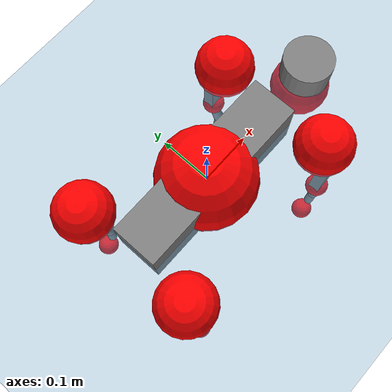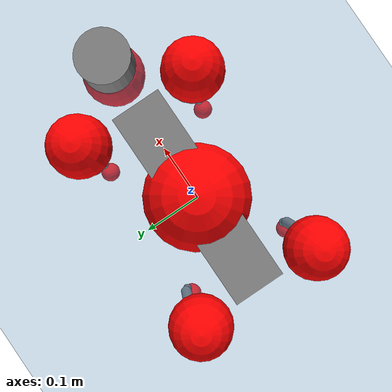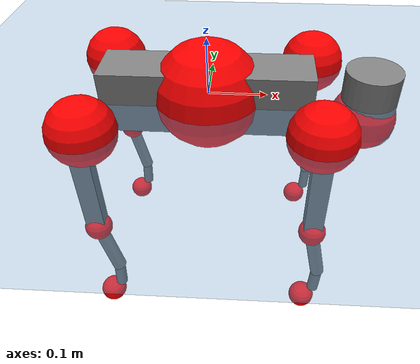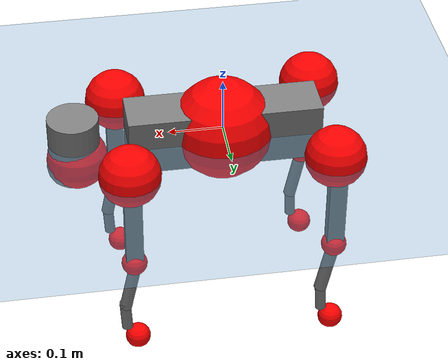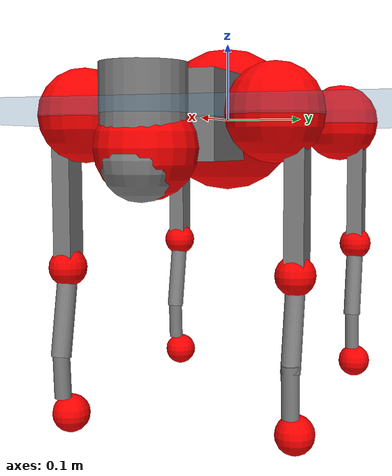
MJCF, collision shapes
<mujoco model="go2">
  <compiler angle="radian" assetdir="assets" balanceinertia="true" inertiafromgeom="false"/>

  <option timestep="0.005" density="1.2" viscosity="2e-05"/>

  <size nkey="1"/>

  <visual>
    <quality shadowsize="8192"/>
    <map shadowclip="0.5"/>
  </visual>

  <default>
    <default class="/">
      <geom contype="0" conaffinity="0" group="1" solref="-1000 -80"/>
      <site size="0.01 0.005 0.005" group="5"/>
      <general forcelimited="true" biastype="affine" gainprm="20" biasprm="0 -20 -0.5"/>
      <default class="go2">
        <joint armature="0.01" damping="0.01" frictionloss="0.2"/>
        <geom condim="1" margin="0.001"/>
        <default class="visual">
          <geom type="mesh" group="2"/>
        </default>
        <default class="collision">
          <geom group="3"/>
          <default class="foot">
            <geom size="0.022 0 0" condim="6" priority="1" friction="0.8 0.02 0.01" solimp="0.015 1 0.022"/>
          </default>
        </default>
        <default class="reward_collision_sphere">
          <geom group="5" rgba="1 0 0 1"/>
        </default>
      </default>
    </default>
  </default>

  <asset>
    <texture type="skybox" colorspace="auto" name="//unnamed_texture_0" builtin="gradient" rgb1="0.95 0.95 0.95" rgb2="0.95 0.95 0.95" width="100" height="600"/>
    <texture type="2d" colorspace="auto" name="texplane" builtin="checker" rgb1="0.345 0.575 0.748" rgb2="0.345 0.575 0.748" markrgb="1 1 1" width="512" height="512"/>
    <material name="MatPlane" class="/" texture="texplane" texuniform="true" texrepeat="2 2" specular="0.9"/>
    <material name="metal" class="/" rgba="0.9 0.95 0.95 1"/>
    <material name="black" class="/" rgba="0 0 0 1"/>
    <material name="white" class="/"/>
    <material name="gray" class="/" rgba="0.671705 0.692426 0.77427 1"/>
    <mesh name="base_0" class="/" file="base_0.obj"/>
    <mesh name="base_1" class="/" file="base_1.obj"/>
    <mesh name="base_2" class="/" file="base_2.obj"/>
    <mesh name="base_3" class="/" file="base_3.obj"/>
    <mesh name="base_4" class="/" file="base_4.obj"/>
    <mesh name="hip_0" class="/" file="hip_0.obj"/>
    <mesh name="hip_1" class="/" file="hip_1.obj"/>
    <mesh name="thigh_0" class="/" file="thigh_0.obj"/>
    <mesh name="thigh_1" class="/" file="thigh_1.obj"/>
    <mesh name="thigh_mirror_0" class="/" file="thigh_mirror_0.obj"/>
    <mesh name="thigh_mirror_1" class="/" file="thigh_mirror_1.obj"/>
    <mesh name="calf_0" class="/" file="calf_0.obj"/>
    <mesh name="calf_1" class="/" file="calf_1.obj"/>
    <mesh name="calf_mirror_0" class="/" file="calf_mirror_0.obj"/>
    <mesh name="calf_mirror_1" class="/" file="calf_mirror_1.obj"/>
    <mesh name="foot" class="/" file="foot.obj"/>
  </asset>

  <worldbody>
    <geom name="floor" class="/" size="100 100 0.125" type="plane" group="0" material="MatPlane"/>
    <light name="toplight_shadow" class="/" pos="0 0 5" dir="0.0990148 0.0990148 -0.990148" type="directional" ambient="0.04 0.04 0.04" diffuse="0.55 0.55 0.55" specular="0.12 0.12 0.12"/>
    <light name="toplight_fill" class="/" pos="0 0 5" dir="0.0990148 0.0990148 -0.990148" type="directional" castshadow="false" ambient="0.04 0.04 0.04" diffuse="0.3 0.3 0.3" specular="0.08 0.08 0.08"/>
    <body name="trunk" childclass="go2" pos="2.51288e-05 -4.60095e-06 0.000721076" quat="1 5.86278e-05 -5.00796e-06 5.85315e-05">
      <inertial pos="0.019729 0.000427554 -0.00502448" quat="-0.000613026 0.713403 -0.00201709 0.70075" mass="5.79395" diaginertia="0.0850741 0.100965 0.0113114"/>
      <joint name="//unnamed_joint_0" type="free" armature="0" damping="0" frictionloss="0"/>
      <geom name="//unnamed_geom_1" class="visual" material="black" mesh="base_0"/>
      <geom name="//unnamed_geom_2" class="visual" material="black" mesh="base_1"/>
      <geom name="//unnamed_geom_3" class="visual" material="black" mesh="base_2"/>
      <geom name="//unnamed_geom_4" class="visual" material="white" mesh="base_3"/>
      <geom name="//unnamed_geom_5" class="visual" material="gray" mesh="base_4"/>
      <geom name="trunk_1" class="collision" size="0.176316 0.0438212 0.053429" type="box"/>
      <geom name="trunk_2" class="collision" size="0.0468675 0.0421808" pos="0.271616 0 0.00854803" type="cylinder"/>
      <geom name="trunk_3" class="collision" size="0.0440555" pos="0.27924 0 -0.0512882"/>
      <geom name="//unnamed_geom_9" class="reward_collision_sphere" size="0.0937351"/>
      <geom name="//unnamed_geom_10" class="reward_collision_sphere" size="0.0562411" pos="0.266851 0 -0.0384661"/>
      <site name="imu" pos="-0.0253023 0.00459107 0.0344285" size="0.00937351"/>
      <camera name="track" pos="0 -2.00842 0" quat="0.707107 0.707107 0 0" mode="trackcom"/>
      <camera name="ego_camera" pos="0.297348 0 0.0384661" quat="-0.5 -0.5 0.5 0.5"/>
      <body name="FL_hip" pos="0.183647 0.0476208 0.00134912" quat="1 8.26128e-05 0.000116102 -1.02964e-05">
        <inertial pos="-0.00503155 0.0023616 0.000744717" quat="0.49815 0.498807 0.506015 0.496978" mass="0.555293" diaginertia="0.000694268 0.000614423 0.000216125"/>
        <joint name="FL_hip_joint" pos="0 0 0" axis="0.999991 -0.00304284 0.00278251" stiffness="0.000151481" range="-1.03784 1.05006" armature="0.00895607" damping="0.00246094" frictionloss="0.189221"/>
        <geom name="//unnamed_geom_11" class="visual" material="metal" mesh="hip_0"/>
        <geom name="//unnamed_geom_12" class="visual" material="gray" mesh="hip_1"/>
        <geom name="//unnamed_geom_13" class="collision" size="0.0431181 0.018747" pos="0 0.0803369 0" quat="0.707107 0.707107 0 0" type="cylinder"/>
        <geom name="//unnamed_geom_14" class="reward_collision_sphere" size="0.0562411" pos="0 0.0702948 0"/>
        <body name="FL_thigh" pos="-9.60598e-05 0.0959989 0.00157346" quat="1 -1.01753e-05 1.4973e-06 -2.77931e-06">
          <inertial pos="-0.00359725 -0.0222297 -0.0269839" quat="0.829813 0.0854831 -0.021079 0.551052" mass="0.950868" diaginertia="0.00469868 0.00591874 0.000395437"/>
          <joint name="FL_thigh_joint" pos="0 0 0" axis="-0.00238262 0.999997 -0.000783022" stiffness="0.00523422" range="-1.54954 3.47725" armature="0.00956931" damping="0.0046693" frictionloss="0.18703"/>
          <geom name="//unnamed_geom_15" class="visual" material="metal" mesh="thigh_0"/>
          <geom name="//unnamed_geom_16" class="visual" material="gray" mesh="thigh_1"/>
          <geom name="//unnamed_geom_17" class="collision" size="0.0998279 0.0114825 0.015935" pos="0 0 -0.0910365" quat="0.707107 0 0.707107 0" type="box"/>
          <body name="FL_calf" pos="0.000257191 -0.00143369 -0.182406" quat="1 2.14808e-05 -0.000215085 -3.94393e-05">
            <inertial pos="0.00635043 -0.000540923 -0.12018" quat="0.710671 0.0015406 -0.00450126 0.703508" mass="0.201" diaginertia="0.00117271 0.00149156 2.43519e-05"/>
            <joint name="FL_calf_joint" pos="0 0 0" axis="0.00373132 0.999983 0.00439091" stiffness="0.000780881" range="-2.72155 -0.846424" armature="0.0095323" damping="0" frictionloss="0.194275"/>
            <geom name="//unnamed_geom_18" class="visual" material="gray" mesh="calf_0"/>
            <geom name="//unnamed_geom_19" class="visual" material="black" mesh="calf_1"/>
            <geom name="FL_calf0" class="collision" size="0.0112482 0.0562411" pos="0.00762431 0 -0.0512882" quat="0.994493 0 -0.104807 0" type="cylinder"/>
            <geom name="//unnamed_geom_21" class="collision" size="0.0103109 0.0304639" pos="0.0190608 0 -0.126511" quat="0.999688 0 0.0249974 0" type="cylinder"/>
            <geom name="//unnamed_geom_22" class="visual" pos="0 0 -0.182073" quat="1 0 0 0" material="black" mesh="foot"/>
            <geom name="FL_foot" class="foot" size="0.0175241" pos="-0.00190608 0 -0.182073"/>
            <geom name="//unnamed_geom_24" class="reward_collision_sphere" size="0.0234338"/>
            <geom name="//unnamed_geom_25" class="reward_collision_sphere" size="0.0234338" pos="-0.00190608 0 -0.182073"/>
            <site name="FL_foot" class="foot" pos="-0.00190608 0 -0.182073" size="0.00937351"/>
          </body>
        </body>
      </body>
      <body name="FR_hip" pos="0.184106 -0.0451019 0.000280667" quat="1 0.000189926 0.000102194 0.000176517">
        <inertial pos="-0.00505221 -0.00204263 -0.000862873" quat="0.497942 0.505327 0.499548 0.497142" mass="0.557251" diaginertia="0.000695308 0.000613193 0.000219183"/>
        <joint name="FR_hip_joint" pos="0 0 0" axis="1 -8.24344e-05 -0.000141907" range="-1.05801 1.03937" armature="0.00931539" damping="0.0125502" frictionloss="0.195944"/>
        <geom name="//unnamed_geom_26" class="visual" pos="0 1.30159e-09 5.58278e-08" quat="4.63268e-05 1 0 0" material="metal" mesh="hip_0"/>
        <geom name="//unnamed_geom_27" class="visual" pos="0 2.11003e-09 -1.38084e-07" quat="4.63268e-05 1 0 0" material="gray" mesh="hip_1"/>
        <geom name="//unnamed_geom_28" class="collision" size="0.0431181 0.018747" pos="0 -0.0803369 0" quat="0.707107 0.707107 0 0" type="cylinder"/>
        <geom name="//unnamed_geom_29" class="reward_collision_sphere" size="0.0562411" pos="0 -0.0702948 0"/>
        <body name="FR_thigh" pos="0.00137141 -0.0961079 3.65966e-05" quat="1 -1.05669e-05 0.000157996 -2.5761e-05">
          <inertial pos="-0.00376685 0.0221541 -0.0278258" quat="0.551619 -0.0200434 0.0847475 0.829538" mass="0.971754" diaginertia="0.0047154 0.00609458 0.00040912"/>
          <joint name="FR_thigh_joint" pos="0 0 0" axis="-0.00281378 -0.999984 -0.00491494" stiffness="0.000565665" range="-3.46798 1.55981" armature="0.00940119" damping="0.0118864" frictionloss="0.183441"/>
          <geom name="//unnamed_geom_30" class="visual" material="metal" mesh="thigh_mirror_0"/>
          <geom name="//unnamed_geom_31" class="visual" material="gray" mesh="thigh_mirror_1"/>
          <geom name="//unnamed_geom_32" class="collision" size="0.0998279 0.0114825 0.015935" pos="0 0 -0.0910365" quat="0.707107 0 0.707107 0" type="box"/>
          <body name="FR_calf" pos="0.000259622 -0.000582581 -0.182799" quat="1 5.38551e-05 -0.000250554 1.46907e-05">
            <inertial pos="0.0062445 0.00021644 -0.120292" quat="0.703783 -0.00483683 0.000989214 0.710398" mass="0.195418" diaginertia="0.001157 0.00149483 2.42464e-05"/>
            <joint name="FR_calf_joint" pos="0 0 0" axis="0.00781347 -0.999965 0.0029811" range="0.839414 2.72524" armature="0.00946072" damping="0.00793216" frictionloss="0.176569"/>
            <geom name="//unnamed_geom_33" class="visual" material="gray" mesh="calf_mirror_0"/>
            <geom name="//unnamed_geom_34" class="visual" material="black" mesh="calf_mirror_1"/>
            <geom name="FR_calf0" class="collision" size="0.0121856 0.0562411" pos="0.00953039 0 -0.0512882" quat="0.995004 0 -0.0998334 0" type="cylinder"/>
            <geom name="//unnamed_geom_36" class="collision" size="0.0103109 0.0304639" pos="0.0190608 0 -0.126511" quat="0.999688 0 0.0249974 0" type="cylinder"/>
            <geom name="//unnamed_geom_37" class="visual" pos="0 0 -0.182073" quat="1 0 0 0" material="black" mesh="foot"/>
            <geom name="FR_foot" class="foot" size="0.0214974" pos="-0.00190608 0 -0.182073"/>
            <geom name="//unnamed_geom_39" class="reward_collision_sphere" size="0.0234338"/>
            <geom name="//unnamed_geom_40" class="reward_collision_sphere" size="0.0234338" pos="-0.00190608 0 -0.182073"/>
            <site name="FR_foot" class="foot" pos="-0.00190608 0 -0.182073" size="0.00937351"/>
          </body>
        </body>
      </body>
      <body name="RL_hip" pos="-0.185018 0.0467911 -0.000108821" quat="1 -1.78573e-05 8.03376e-05 6.95843e-05">
        <inertial pos="0.00591699 0.00248256 0.000544282" quat="0.499733 0.49942 0.500367 0.50048" mass="0.549883" diaginertia="0.000694202 0.000602451 0.000221041"/>
        <joint name="RL_hip_joint" pos="0 0 0" axis="-0.999899 0.00828705 0.0115414" stiffness="0.000333884" range="-1.03927 1.06214" armature="0.00939236" damping="0.0162362" frictionloss="0.17924"/>
        <geom name="//unnamed_geom_41" class="visual" pos="-8.55793e-10 0 -1.67755e-07" quat="4.63268e-05 0 1 0" material="metal" mesh="hip_0"/>
        <geom name="//unnamed_geom_42" class="visual" pos="-1.38734e-09 0 -1.48775e-07" quat="4.63268e-05 0 1 0" material="gray" mesh="hip_1"/>
        <geom name="//unnamed_geom_43" class="collision" size="0.0431181 0.018747" pos="0 0.0803369 0" quat="0.707107 0.707107 0 0" type="cylinder"/>
        <geom name="//unnamed_geom_44" class="reward_collision_sphere" size="0.0562411" pos="0 0.0702948 0"/>
        <body name="RL_thigh" pos="0.000227354 0.0960309 -0.000367345" quat="1 0.000443667 -0.00011006 8.49059e-05">
          <inertial pos="-0.00329172 -0.0214112 -0.0280267" quat="0.830436 0.0857334 -0.0207248 0.550088" mass="0.958304" diaginertia="0.00467776 0.00607181 0.000399419"/>
          <joint name="RL_thigh_joint" pos="0 0 0" axis="5.01781e-05 1 -0.000155358" range="-0.523715 4.53577" armature="0.00940729" damping="0.00988675" frictionloss="0.188533"/>
          <geom name="//unnamed_geom_45" class="visual" material="metal" mesh="thigh_0"/>
          <geom name="//unnamed_geom_46" class="visual" material="gray" mesh="thigh_1"/>
          <geom name="//unnamed_geom_47" class="collision" size="0.0998279 0.0114825 0.015935" pos="0 0 -0.0910365" quat="0.707107 0 0.707107 0" type="box"/>
          <body name="RL_calf" pos="6.79824e-05 -0.000713411 -0.182105" quat="1 -2.61093e-05 -2.43861e-05 -2.6375e-05">
            <inertial pos="0.00548038 -0.000519119 -0.120057" quat="0.710704 0.00152143 -0.00452221 0.703475" mass="0.20181" diaginertia="0.00119142 0.00152692 2.5085e-05"/>
            <joint name="RL_calf_joint" pos="0 0 0" axis="-0.0022627 0.999962 0.00841212" range="-2.72478 -0.865384" armature="0.00945138" damping="0" frictionloss="0.180024"/>
            <geom name="//unnamed_geom_48" class="visual" material="gray" mesh="calf_0"/>
            <geom name="//unnamed_geom_49" class="visual" material="black" mesh="calf_1"/>
            <geom name="RL_calf0" class="collision" size="0.0121856 0.0562411" pos="0.00953039 0 -0.0512882" quat="0.995004 0 -0.0998334 0" type="cylinder"/>
            <geom name="//unnamed_geom_51" class="collision" size="0.0103109 0.0304639" pos="0.0190608 0 -0.126511" quat="0.999688 0 0.0249974 0" type="cylinder"/>
            <geom name="//unnamed_geom_52" class="visual" pos="0 0 -0.182073" quat="1 0 0 0" material="black" mesh="foot"/>
            <geom name="RL_foot" class="foot" size="0.0174004" pos="-0.00190608 0 -0.182073"/>
            <geom name="//unnamed_geom_54" class="reward_collision_sphere" size="0.0234338"/>
            <geom name="//unnamed_geom_55" class="reward_collision_sphere" size="0.0234338" pos="-0.00190608 0 -0.182073"/>
            <site name="RL_foot" class="foot" pos="-0.00190608 0 -0.182073" size="0.00937351"/>
          </body>
        </body>
      </body>
      <body name="RR_hip" pos="-0.184464 -0.0485169 -0.000997196" quat="1 0.000101398 -7.34651e-05 -0.000120559">
        <inertial pos="0.00559561 -0.00274237 0.00049806" quat="0.501385 0.497733 0.493372 0.507404" mass="0.562555" diaginertia="0.000694563 0.000621635 0.000221113"/>
        <joint name="RR_hip_joint" pos="0 0 0" axis="-0.999989 -0.00305397 -0.00346462" stiffness="0.000284847" range="-1.04481 1.05725" armature="0.00932487" damping="0.00927212" frictionloss="0.178893"/>
        <geom name="//unnamed_geom_56" class="visual" pos="8.57565e-10 1.30159e-09 -2.23583e-07" quat="2.14617e-09 4.63268e-05 4.63268e-05 -1" material="metal" mesh="hip_0"/>
        <geom name="//unnamed_geom_57" class="visual" pos="1.38296e-09 2.11003e-09 -1.06915e-08" quat="2.14617e-09 4.63268e-05 4.63268e-05 -1" material="gray" mesh="hip_1"/>
        <geom name="//unnamed_geom_58" class="collision" size="0.0431181 0.018747" pos="0 -0.0803369 0" quat="0.707107 0.707107 0 0" type="cylinder"/>
        <geom name="//unnamed_geom_59" class="reward_collision_sphere" size="0.0562411" pos="0 -0.0702948 0"/>
        <body name="RR_thigh" pos="0.000223693 -0.0966306 -0.00256208" quat="1 9.20396e-05 8.03353e-05 -7.83122e-05">
          <inertial pos="-0.00338478 0.0237119 -0.0289669" quat="0.55086 -0.0182636 0.0843021 0.830128" mass="0.935951" diaginertia="0.00462413 0.00587362 0.000395207"/>
          <joint name="RR_thigh_joint" pos="0 0 0" axis="-0.00976188 -0.999952 0.00128652" range="-4.54906 0.514869" armature="0.00996909" damping="0.0173154" frictionloss="0.187732"/>
          <geom name="//unnamed_geom_60" class="visual" material="metal" mesh="thigh_mirror_0"/>
          <geom name="//unnamed_geom_61" class="visual" material="gray" mesh="thigh_mirror_1"/>
          <geom name="//unnamed_geom_62" class="collision" size="0.0998279 0.0114825 0.015935" pos="0 0 -0.0910365" quat="0.707107 0 0.707107 0" type="box"/>
          <body name="RR_calf" pos="0.000942267 -0.000415313 -0.182595" quat="1 -9.21097e-05 0.000109135 -0.000132175">
            <inertial pos="0.00498899 0.000743629 -0.121259" quat="0.705117 -0.00589512 -0.00131079 0.709065" mass="0.200098" diaginertia="0.00119156 0.00150935 2.48946e-05"/>
            <joint name="RR_calf_joint" pos="0 0 0" axis="0.0031618 -0.999994 0.0015494" range="0.831725 2.7298" armature="0.00950618" damping="0.00927142" frictionloss="0.190898"/>
            <geom name="//unnamed_geom_63" class="visual" material="gray" mesh="calf_mirror_0"/>
            <geom name="//unnamed_geom_64" class="visual" material="black" mesh="calf_mirror_1"/>
            <geom name="RR_calf0" class="collision" size="0.0121856 0.0562411" pos="0.00953039 0 -0.0512882" quat="0.995004 0 -0.0998334 0" type="cylinder"/>
            <geom name="//unnamed_geom_66" class="collision" size="0.0103109 0.0304639" pos="0.0190608 0 -0.126511" quat="0.999688 0 0.0249974 0" type="cylinder"/>
            <geom name="//unnamed_geom_67" class="visual" pos="0 0 -0.182073" quat="1 0 0 0" material="black" mesh="foot"/>
            <geom name="RR_foot" class="foot" size="0.0210664" pos="-0.00190608 0 -0.182073"/>
            <geom name="//unnamed_geom_69" class="reward_collision_sphere" size="0.0234338"/>
            <geom name="//unnamed_geom_70" class="reward_collision_sphere" size="0.0234338" pos="-0.00190608 0 -0.182073"/>
            <site name="RR_foot" class="foot" pos="-0.00190608 0 -0.182073" size="0.00937351"/>
          </body>
        </body>
      </body>
    </body>
  </worldbody>

  <contact>
    <pair class="/" geom1="floor" geom2="FL_foot" name="//unnamed_contact_0"/>
    <pair class="/" geom1="floor" geom2="FR_foot" name="//unnamed_contact_1"/>
    <pair class="/" geom1="floor" geom2="RL_foot" name="//unnamed_contact_2"/>
    <pair class="/" geom1="floor" geom2="RR_foot" name="//unnamed_contact_3"/>
  </contact>

  <actuator>
    <general name="FL_hip" class="/" joint="FL_hip_joint" forcerange="-22.9294 22.9294" gainprm="19.1329" biasprm="0 -19.1329 -0.463768"/>
    <general name="FL_thigh" class="/" joint="FL_thigh_joint" forcerange="-21.3119 21.3119" gainprm="19.1329" biasprm="0 -19.1329 -0.463768"/>
    <general name="FL_calf" class="/" joint="FL_calf_joint" forcerange="-42.778 42.778" gainprm="19.1329" biasprm="0 -19.1329 -0.463768"/>
    <general name="FR_hip" class="/" joint="FR_hip_joint" forcerange="-22.0347 22.0347" gainprm="19.1329" biasprm="0 -19.1329 -0.463768"/>
    <general name="FR_thigh" class="/" joint="FR_thigh_joint" forcerange="-21.9053 21.9053" gainprm="19.1329" biasprm="0 -19.1329 -0.463768"/>
    <general name="FR_calf" class="/" joint="FR_calf_joint" forcerange="-43.3783 43.3783" gainprm="19.1329" biasprm="0 -19.1329 -0.463768"/>
    <general name="RL_hip" class="/" joint="RL_hip_joint" forcerange="-21.523 21.523" gainprm="19.1329" biasprm="0 -19.1329 -0.463768"/>
    <general name="RL_thigh" class="/" joint="RL_thigh_joint" forcerange="-22.2722 22.2722" gainprm="19.1329" biasprm="0 -19.1329 -0.463768"/>
    <general name="RL_calf" class="/" joint="RL_calf_joint" forcerange="-43.9706 43.9706" gainprm="19.1329" biasprm="0 -19.1329 -0.463768"/>
    <general name="RR_hip" class="/" joint="RR_hip_joint" forcerange="-21.3462 21.3462" gainprm="19.1329" biasprm="0 -19.1329 -0.463768"/>
    <general name="RR_thigh" class="/" joint="RR_thigh_joint" forcerange="-21.8174 21.8174" gainprm="19.1329" biasprm="0 -19.1329 -0.463768"/>
    <general name="RR_calf" class="/" joint="RR_calf_joint" forcerange="-41.936 41.936" gainprm="19.1329" biasprm="0 -19.1329 -0.463768"/>
  </actuator>

  <sensor>
    <gyro site="imu" name="imu_angular_velocity"/>
    <velocimeter site="imu" name="imu_linear_velocity"/>
    <framelinvel objtype="site" objname="FL_foot" name="FL_foot_global_linear_velocity"/>
    <framelinvel objtype="site" objname="FR_foot" name="FR_foot_global_linear_velocity"/>
    <framelinvel objtype="site" objname="RL_foot" name="RL_foot_global_linear_velocity"/>
    <framelinvel objtype="site" objname="RR_foot" name="RR_foot_global_linear_velocity"/>
  </sensor>

  <keyframe>
    <key name="home" qpos="0 0 0.325 1 0 0 0 0.1 0.8 -1.5 -0.1 -0.8 1.5 -0.1 0.8 -1.5 0.1 -0.8 1.5"/>
  </keyframe>
</mujoco>
